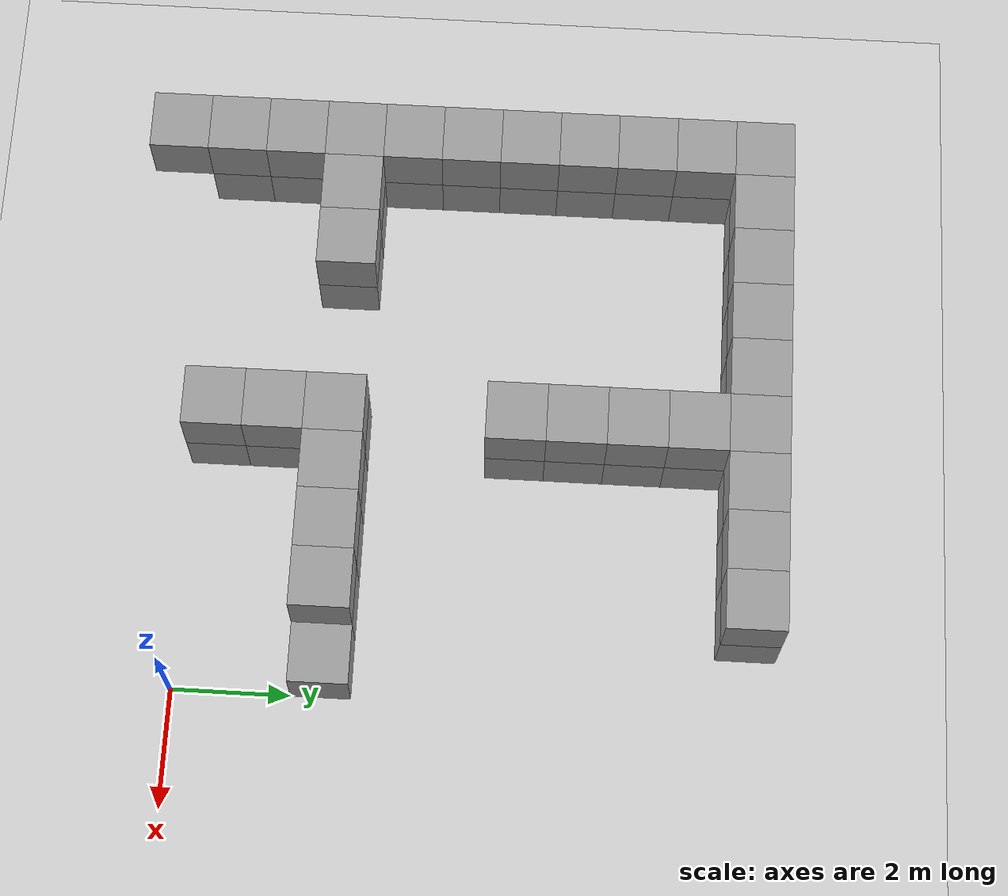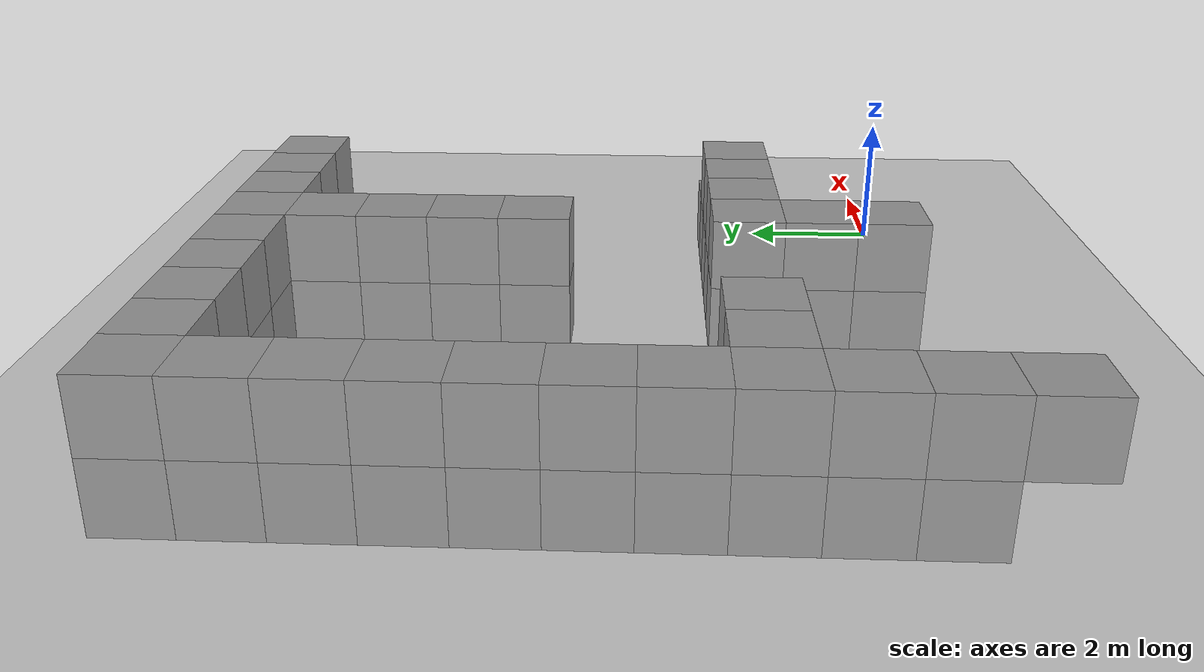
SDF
<sdf version="1.7">
 <world name="default">
  <model name="ground_plane">
   <static>1</static>
   <link name="link">
    <collision name="collision">
     <geometry><plane><normal>0 0 1</normal><size>100 100</size></plane></geometry>
     <surface>
      <contact><collide_bitmask>65535</collide_bitmask></contact>
      <friction><ode><mu>100</mu><mu2>50</mu2></ode></friction>
     </surface>
    </collision>
    <visual name="visual">
     <cast_shadows>0</cast_shadows>
     <geometry><plane><normal>0 0 1</normal><size>100 100</size></plane></geometry>
     <material>
      <script><uri>file://media/materials/scripts/gazebo.material</uri><name>Gazebo/Grey</name></script>
     </material>
    </visual>
   </link>
  </model>
  <model name="unit_box_clone_7_clone_5">
   <pose>-1.5 9.5 0.5 0 -0 0</pose>
   <link name="link">
    <inertial>
     <mass>1</mass>
     <inertia>
      <ixx>0.166667</ixx>
      <ixy>0</ixy>
      <ixz>0</ixz>
      <iyy>0.166667</iyy>
      <iyz>0</iyz>
      <izz>0.166667</izz>
     </inertia>
    </inertial>
    <collision name="collision"><geometry><box><size>1 1 1</size></box></geometry></collision>
    <visual name="visual">
     <geometry><box><size>1 1 1</size></box></geometry>
     <material>
      <script><name>Gazebo/Grey</name><uri>file://media/materials/scripts/gazebo.material</uri></script>
     </material>
    </visual>
   </link>
  </model>
  <model name="unit_box_clone_7_clone_6">
   <pose>-2.5 9.5 0.5 0 -0 0</pose>
   <link name="link">
    <inertial>
     <mass>1</mass>
     <inertia>
      <ixx>0.166667</ixx>
      <ixy>0</ixy>
      <ixz>0</ixz>
      <iyy>0.166667</iyy>
      <iyz>0</iyz>
      <izz>0.166667</izz>
     </inertia>
    </inertial>
    <collision name="collision"><geometry><box><size>1 1 1</size></box></geometry></collision>
    <visual name="visual">
     <geometry><box><size>1 1 1</size></box></geometry>
     <material>
      <script><name>Gazebo/Grey</name><uri>file://media/materials/scripts/gazebo.material</uri></script>
     </material>
    </visual>
   </link>
  </model>
  <model name="unit_box_clone_7_clone_7">
   <pose>-3.5 9.5 0.5 0 -0 0</pose>
   <link name="link">
    <inertial>
     <mass>1</mass>
     <inertia>
      <ixx>0.166667</ixx>
      <ixy>0</ixy>
      <ixz>0</ixz>
      <iyy>0.166667</iyy>
      <iyz>0</iyz>
      <izz>0.166667</izz>
     </inertia>
    </inertial>
    <collision name="collision"><geometry><box><size>1 1 1</size></box></geometry></collision>
    <visual name="visual">
     <geometry><box><size>1 1 1</size></box></geometry>
     <material>
      <script><name>Gazebo/Grey</name><uri>file://media/materials/scripts/gazebo.material</uri></script>
     </material>
    </visual>
   </link>
  </model>
  <model name="unit_box_clone_7_clone_8">
   <pose>-4.5 9.5 0.5 0 -0 0</pose>
   <link name="link">
    <inertial>
     <mass>1</mass>
     <inertia>
      <ixx>0.166667</ixx>
      <ixy>0</ixy>
      <ixz>0</ixz>
      <iyy>0.166667</iyy>
      <iyz>0</iyz>
      <izz>0.166667</izz>
     </inertia>
    </inertial>
    <collision name="collision"><geometry><box><size>1 1 1</size></box></geometry></collision>
    <visual name="visual">
     <geometry><box><size>1 1 1</size></box></geometry>
     <material>
      <script><name>Gazebo/Grey</name><uri>file://media/materials/scripts/gazebo.material</uri></script>
     </material>
    </visual>
   </link>
  </model>
  <model name="unit_box_clone_7_clone_9">
   <pose>-5.5 9.5 0.5 0 -0 0</pose>
   <link name="link">
    <inertial>
     <mass>1</mass>
     <inertia>
      <ixx>0.166667</ixx>
      <ixy>0</ixy>
      <ixz>0</ixz>
      <iyy>0.166667</iyy>
      <iyz>0</iyz>
      <izz>0.166667</izz>
     </inertia>
    </inertial>
    <collision name="collision"><geometry><box><size>1 1 1</size></box></geometry></collision>
    <visual name="visual">
     <geometry><box><size>1 1 1</size></box></geometry>
     <material>
      <script><name>Gazebo/Grey</name><uri>file://media/materials/scripts/gazebo.material</uri></script>
     </material>
    </visual>
   </link>
  </model>
  <model name="unit_box_clone_0_clone_clone_26_clone_18">
   <pose>-5.5 9.5 1.5 0 -0 0</pose>
   <link name="link">
    <inertial>
     <mass>1</mass>
     <inertia>
      <ixx>0.166667</ixx>
      <ixy>0</ixy>
      <ixz>0</ixz>
      <iyy>0.166667</iyy>
      <iyz>0</iyz>
      <izz>0.166667</izz>
     </inertia>
    </inertial>
    <collision name="collision"><geometry><box><size>1 1 1</size></box></geometry></collision>
    <visual name="visual">
     <geometry><box><size>1 1 1</size></box></geometry>
     <material>
      <script><name>Gazebo/Grey</name><uri>file://media/materials/scripts/gazebo.material</uri></script>
     </material>
    </visual>
   </link>
  </model>
  <model name="unit_box_clone_0_clone_clone_26_clone_19">
   <pose>-4.5 9.5 1.5 0 -0 0</pose>
   <link name="link">
    <inertial>
     <mass>1</mass>
     <inertia>
      <ixx>0.166667</ixx>
      <ixy>0</ixy>
      <ixz>0</ixz>
      <iyy>0.166667</iyy>
      <iyz>0</iyz>
      <izz>0.166667</izz>
     </inertia>
    </inertial>
    <collision name="collision"><geometry><box><size>1 1 1</size></box></geometry></collision>
    <visual name="visual">
     <geometry><box><size>1 1 1</size></box></geometry>
     <material>
      <script><name>Gazebo/Grey</name><uri>file://media/materials/scripts/gazebo.material</uri></script>
     </material>
    </visual>
   </link>
  </model>
  <model name="unit_box_clone_0_clone_clone_26_clone_20">
   <pose>-2.5 9.5 1.5 0 -0 0</pose>
   <link name="link">
    <inertial>
     <mass>1</mass>
     <inertia>
      <ixx>0.166667</ixx>
      <ixy>0</ixy>
      <ixz>0</ixz>
      <iyy>0.166667</iyy>
      <iyz>0</iyz>
      <izz>0.166667</izz>
     </inertia>
    </inertial>
    <collision name="collision"><geometry><box><size>1 1 1</size></box></geometry></collision>
    <visual name="visual">
     <geometry><box><size>1 1 1</size></box></geometry>
     <material>
      <script><name>Gazebo/Grey</name><uri>file://media/materials/scripts/gazebo.material</uri></script>
     </material>
    </visual>
   </link>
  </model>
  <model name="unit_box_clone_0_clone_clone_26_clone_21">
   <pose>-3.5 9.5 1.5 0 -0 0</pose>
   <link name="link">
    <inertial>
     <mass>1</mass>
     <inertia>
      <ixx>0.166667</ixx>
      <ixy>0</ixy>
      <ixz>0</ixz>
      <iyy>0.166667</iyy>
      <iyz>0</iyz>
      <izz>0.166667</izz>
     </inertia>
    </inertial>
    <collision name="collision"><geometry><box><size>1 1 1</size></box></geometry></collision>
    <visual name="visual">
     <geometry><box><size>1 1 1</size></box></geometry>
     <material>
      <script><name>Gazebo/Grey</name><uri>file://media/materials/scripts/gazebo.material</uri></script>
     </material>
    </visual>
   </link>
  </model>
  <model name="unit_box_clone_0_clone_clone_26_clone_22">
   <pose>-1.5 9.5 1.5 0 -0 0</pose>
   <link name="link">
    <inertial>
     <mass>1</mass>
     <inertia>
      <ixx>0.166667</ixx>
      <ixy>0</ixy>
      <ixz>0</ixz>
      <iyy>0.166667</iyy>
      <iyz>0</iyz>
      <izz>0.166667</izz>
     </inertia>
    </inertial>
    <collision name="collision"><geometry><box><size>1 1 1</size></box></geometry></collision>
    <visual name="visual">
     <geometry><box><size>1 1 1</size></box></geometry>
     <material>
      <script><name>Gazebo/Grey</name><uri>file://media/materials/scripts/gazebo.material</uri></script>
     </material>
    </visual>
   </link>
  </model>
  <model name="unit_box_clone_7_clone_18_clone_2">
   <pose>-4.5 8.5 0.5 0 -0 0</pose>
   <link name="link">
    <inertial>
     <mass>1</mass>
     <inertia>
      <ixx>0.166667</ixx>
      <ixy>0</ixy>
      <ixz>0</ixz>
      <iyy>0.166667</iyy>
      <iyz>0</iyz>
      <izz>0.166667</izz>
     </inertia>
    </inertial>
    <collision name="collision"><geometry><box><size>1 1 1</size></box></geometry></collision>
    <visual name="visual">
     <geometry><box><size>1 1 1</size></box></geometry>
     <material>
      <script><name>Gazebo/Grey</name><uri>file://media/materials/scripts/gazebo.material</uri></script>
     </material>
    </visual>
   </link>
  </model>
  <model name="unit_box_clone_7_clone_18_clone_3">
   <pose>-4.5 7.5 0.5 0 -0 0</pose>
   <link name="link">
    <inertial>
     <mass>1</mass>
     <inertia>
      <ixx>0.166667</ixx>
      <ixy>0</ixy>
      <ixz>0</ixz>
      <iyy>0.166667</iyy>
      <iyz>0</iyz>
      <izz>0.166667</izz>
     </inertia>
    </inertial>
    <collision name="collision"><geometry><box><size>1 1 1</size></box></geometry></collision>
    <visual name="visual">
     <geometry><box><size>1 1 1</size></box></geometry>
     <material>
      <script><name>Gazebo/Grey</name><uri>file://media/materials/scripts/gazebo.material</uri></script>
     </material>
    </visual>
   </link>
  </model>
  <model name="unit_box_clone_7_clone_18_clone_3_clone">
   <pose>-4.5 6.5 0.5 0 -0 0</pose>
   <link name="link">
    <inertial>
     <mass>1</mass>
     <inertia>
      <ixx>0.166667</ixx>
      <ixy>0</ixy>
      <ixz>0</ixz>
      <iyy>0.166667</iyy>
      <iyz>0</iyz>
      <izz>0.166667</izz>
     </inertia>
    </inertial>
    <collision name="collision"><geometry><box><size>1 1 1</size></box></geometry></collision>
    <visual name="visual">
     <geometry><box><size>1 1 1</size></box></geometry>
     <material>
      <script><name>Gazebo/Grey</name><uri>file://media/materials/scripts/gazebo.material</uri></script>
     </material>
    </visual>
   </link>
  </model>
  <model name="unit_box_clone_0_clone_clone_26_clone_2_clone_2">
   <pose>-4.5 8.5 1.5 0 -0 0</pose>
   <link name="link">
    <inertial>
     <mass>1</mass>
     <inertia>
      <ixx>0.166667</ixx>
      <ixy>0</ixy>
      <ixz>0</ixz>
      <iyy>0.166667</iyy>
      <iyz>0</iyz>
      <izz>0.166667</izz>
     </inertia>
    </inertial>
    <collision name="collision"><geometry><box><size>1 1 1</size></box></geometry></collision>
    <visual name="visual">
     <geometry><box><size>1 1 1</size></box></geometry>
     <material>
      <script><name>Gazebo/Grey</name><uri>file://media/materials/scripts/gazebo.material</uri></script>
     </material>
    </visual>
   </link>
  </model>
  <model name="unit_box_clone_0_clone_clone_26_clone_2_clone_3">
   <pose>-4.5 7.5 1.5 0 -0 0</pose>
   <link name="link">
    <inertial>
     <mass>1</mass>
     <inertia>
      <ixx>0.166667</ixx>
      <ixy>0</ixy>
      <ixz>0</ixz>
      <iyy>0.166667</iyy>
      <iyz>0</iyz>
      <izz>0.166667</izz>
     </inertia>
    </inertial>
    <collision name="collision"><geometry><box><size>1 1 1</size></box></geometry></collision>
    <visual name="visual">
     <geometry><box><size>1 1 1</size></box></geometry>
     <material>
      <script><name>Gazebo/Grey</name><uri>file://media/materials/scripts/gazebo.material</uri></script>
     </material>
    </visual>
   </link>
  </model>
  <model name="unit_box_clone_0_clone_clone_26_clone_2_clone_4">
   <pose>-4.5 6.5 1.5 0 -0 0</pose>
   <link name="link">
    <inertial>
     <mass>1</mass>
     <inertia>
      <ixx>0.166667</ixx>
      <ixy>0</ixy>
      <ixz>0</ixz>
      <iyy>0.166667</iyy>
      <iyz>0</iyz>
      <izz>0.166667</izz>
     </inertia>
    </inertial>
    <collision name="collision"><geometry><box><size>1 1 1</size></box></geometry></collision>
    <visual name="visual">
     <geometry><box><size>1 1 1</size></box></geometry>
     <material>
      <script><name>Gazebo/Grey</name><uri>file://media/materials/scripts/gazebo.material</uri></script>
     </material>
    </visual>
   </link>
  </model>
  <model name="unit_box_clone_7_clone_18_clone_3_clone_clone_3">
   <pose>-4.5 2.5 0.5 0 -0 0</pose>
   <link name="link">
    <inertial>
     <mass>1</mass>
     <inertia>
      <ixx>0.166667</ixx>
      <ixy>0</ixy>
      <ixz>0</ixz>
      <iyy>0.166667</iyy>
      <iyz>0</iyz>
      <izz>0.166667</izz>
     </inertia>
    </inertial>
    <collision name="collision"><geometry><box><size>1 1 1</size></box></geometry></collision>
    <visual name="visual">
     <geometry><box><size>1 1 1</size></box></geometry>
     <material>
      <script><name>Gazebo/Grey</name><uri>file://media/materials/scripts/gazebo.material</uri></script>
     </material>
    </visual>
   </link>
  </model>
  <model name="unit_box_clone_0_clone_clone_26_clone_2_clone_1_clone_0">
   <pose>-4.5 2.5 1.5 0 -0 0</pose>
   <link name="link">
    <inertial>
     <mass>1</mass>
     <inertia>
      <ixx>0.166667</ixx>
      <ixy>0</ixy>
      <ixz>0</ixz>
      <iyy>0.166667</iyy>
      <iyz>0</iyz>
      <izz>0.166667</izz>
     </inertia>
    </inertial>
    <collision name="collision"><geometry><box><size>1 1 1</size></box></geometry></collision>
    <visual name="visual">
     <geometry><box><size>1 1 1</size></box></geometry>
     <material>
      <script><name>Gazebo/Grey</name><uri>file://media/materials/scripts/gazebo.material</uri></script>
     </material>
    </visual>
   </link>
  </model>
  <model name="unit_box_clone_7_clone_18_clone_3_clone_clone_5">
   <pose>-4.5 5.5 0.5 0 -0 0</pose>
   <link name="link">
    <inertial>
     <mass>1</mass>
     <inertia>
      <ixx>0.166667</ixx>
      <ixy>0</ixy>
      <ixz>0</ixz>
      <iyy>0.166667</iyy>
      <iyz>0</iyz>
      <izz>0.166667</izz>
     </inertia>
    </inertial>
    <collision name="collision"><geometry><box><size>1 1 1</size></box></geometry></collision>
    <visual name="visual">
     <geometry><box><size>1 1 1</size></box></geometry>
     <material>
      <script><name>Gazebo/Grey</name><uri>file://media/materials/scripts/gazebo.material</uri></script>
     </material>
    </visual>
   </link>
  </model>
  <model name="unit_box_clone_0_clone_clone_26_clone_2_clone_4_clone">
   <pose>-4.5 5.5 1.5 0 -0 0</pose>
   <link name="link">
    <inertial>
     <mass>1</mass>
     <inertia>
      <ixx>0.166667</ixx>
      <ixy>0</ixy>
      <ixz>0</ixz>
      <iyy>0.166667</iyy>
      <iyz>0</iyz>
      <izz>0.166667</izz>
     </inertia>
    </inertial>
    <collision name="collision"><geometry><box><size>1 1 1</size></box></geometry></collision>
    <visual name="visual">
     <geometry><box><size>1 1 1</size></box></geometry>
     <material>
      <script><name>Gazebo/Grey</name><uri>file://media/materials/scripts/gazebo.material</uri></script>
     </material>
    </visual>
   </link>
  </model>
  <model name="unit_box_clone_7_clone_18_clone_3_clone_clone_3_clone">
   <pose>-3.5 2.5 0.5 0 -0 0</pose>
   <link name="link">
    <inertial>
     <mass>1</mass>
     <inertia>
      <ixx>0.166667</ixx>
      <ixy>0</ixy>
      <ixz>0</ixz>
      <iyy>0.166667</iyy>
      <iyz>0</iyz>
      <izz>0.166667</izz>
     </inertia>
    </inertial>
    <collision name="collision"><geometry><box><size>1 1 1</size></box></geometry></collision>
    <visual name="visual">
     <geometry><box><size>1 1 1</size></box></geometry>
     <material>
      <script><name>Gazebo/Grey</name><uri>file://media/materials/scripts/gazebo.material</uri></script>
     </material>
    </visual>
   </link>
  </model>
  <model name="unit_box_clone_7_clone_18_clone_3_clone_clone_3_clone_0">
   <pose>-2.5 2.5 0.5 0 -0 0</pose>
   <link name="link">
    <inertial>
     <mass>1</mass>
     <inertia>
      <ixx>0.166667</ixx>
      <ixy>0</ixy>
      <ixz>0</ixz>
      <iyy>0.166667</iyy>
      <iyz>0</iyz>
      <izz>0.166667</izz>
     </inertia>
    </inertial>
    <collision name="collision"><geometry><box><size>1 1 1</size></box></geometry></collision>
    <visual name="visual">
     <geometry><box><size>1 1 1</size></box></geometry>
     <material>
      <script><name>Gazebo/Grey</name><uri>file://media/materials/scripts/gazebo.material</uri></script>
     </material>
    </visual>
   </link>
  </model>
  <model name="unit_box_clone_7_clone_18_clone_3_clone_clone_3_clone_1">
   <pose>-1.5 2.5 0.5 0 -0 0</pose>
   <link name="link">
    <inertial>
     <mass>1</mass>
     <inertia>
      <ixx>0.166667</ixx>
      <ixy>0</ixy>
      <ixz>0</ixz>
      <iyy>0.166667</iyy>
      <iyz>0</iyz>
      <izz>0.166667</izz>
     </inertia>
    </inertial>
    <collision name="collision"><geometry><box><size>1 1 1</size></box></geometry></collision>
    <visual name="visual">
     <geometry><box><size>1 1 1</size></box></geometry>
     <material>
      <script><name>Gazebo/Grey</name><uri>file://media/materials/scripts/gazebo.material</uri></script>
     </material>
    </visual>
   </link>
  </model>
  <model name="unit_box_clone_7_clone_18_clone_3_clone_clone_3_clone_2">
   <pose>-0.5 2.5 0.5 0 -0 0</pose>
   <link name="link">
    <inertial>
     <mass>1</mass>
     <inertia>
      <ixx>0.166667</ixx>
      <ixy>0</ixy>
      <ixz>0</ixz>
      <iyy>0.166667</iyy>
      <iyz>0</iyz>
      <izz>0.166667</izz>
     </inertia>
    </inertial>
    <collision name="collision"><geometry><box><size>1 1 1</size></box></geometry></collision>
    <visual name="visual">
     <geometry><box><size>1 1 1</size></box></geometry>
     <material>
      <script><name>Gazebo/Grey</name><uri>file://media/materials/scripts/gazebo.material</uri></script>
     </material>
    </visual>
   </link>
  </model>
  <model name="unit_box_clone_0_clone_clone_26_clone_2_clone_1_clone_0_clone">
   <pose>-3.5 2.5 1.5 0 -0 0</pose>
   <link name="link">
    <inertial>
     <mass>1</mass>
     <inertia>
      <ixx>0.166667</ixx>
      <ixy>0</ixy>
      <ixz>0</ixz>
      <iyy>0.166667</iyy>
      <iyz>0</iyz>
      <izz>0.166667</izz>
     </inertia>
    </inertial>
    <collision name="collision"><geometry><box><size>1 1 1</size></box></geometry></collision>
    <visual name="visual">
     <geometry><box><size>1 1 1</size></box></geometry>
     <material>
      <script><name>Gazebo/Grey</name><uri>file://media/materials/scripts/gazebo.material</uri></script>
     </material>
    </visual>
   </link>
  </model>
  <model name="unit_box_clone_0_clone_clone_26_clone_2_clone_1_clone_0_clone_0">
   <pose>-2.5 2.5 1.5 0 -0 0</pose>
   <link name="link">
    <inertial>
     <mass>1</mass>
     <inertia>
      <ixx>0.166667</ixx>
      <ixy>0</ixy>
      <ixz>0</ixz>
      <iyy>0.166667</iyy>
      <iyz>0</iyz>
      <izz>0.166667</izz>
     </inertia>
    </inertial>
    <collision name="collision"><geometry><box><size>1 1 1</size></box></geometry></collision>
    <visual name="visual">
     <geometry><box><size>1 1 1</size></box></geometry>
     <material>
      <script><name>Gazebo/Grey</name><uri>file://media/materials/scripts/gazebo.material</uri></script>
     </material>
    </visual>
   </link>
  </model>
  <model name="unit_box_clone_0_clone_clone_26_clone_2_clone_1_clone_0_clone_1">
   <pose>-1.5 2.5 1.5 0 -0 0</pose>
   <link name="link">
    <inertial>
     <mass>1</mass>
     <inertia>
      <ixx>0.166667</ixx>
      <ixy>0</ixy>
      <ixz>0</ixz>
      <iyy>0.166667</iyy>
      <iyz>0</iyz>
      <izz>0.166667</izz>
     </inertia>
    </inertial>
    <collision name="collision"><geometry><box><size>1 1 1</size></box></geometry></collision>
    <visual name="visual">
     <geometry><box><size>1 1 1</size></box></geometry>
     <material>
      <script><name>Gazebo/Grey</name><uri>file://media/materials/scripts/gazebo.material</uri></script>
     </material>
    </visual>
   </link>
  </model>
  <model name="unit_box_clone_7_clone_18_clone_3_clone_clone_3_clone_3">
   <pose>-4.5 1.5 0.5 0 -0 0</pose>
   <link name="link">
    <inertial>
     <mass>1</mass>
     <inertia>
      <ixx>0.166667</ixx>
      <ixy>0</ixy>
      <ixz>0</ixz>
      <iyy>0.166667</iyy>
      <iyz>0</iyz>
      <izz>0.166667</izz>
     </inertia>
    </inertial>
    <collision name="collision"><geometry><box><size>1 1 1</size></box></geometry></collision>
    <visual name="visual">
     <geometry><box><size>1 1 1</size></box></geometry>
     <material>
      <script><name>Gazebo/Grey</name><uri>file://media/materials/scripts/gazebo.material</uri></script>
     </material>
    </visual>
   </link>
  </model>
  <model name="unit_box_clone_7_clone_18_clone_3_clone_clone_3_clone_4">
   <pose>-4.5 0.5 0.5 0 -0 0</pose>
   <link name="link">
    <inertial>
     <mass>1</mass>
     <inertia>
      <ixx>0.166667</ixx>
      <ixy>0</ixy>
      <ixz>0</ixz>
      <iyy>0.166667</iyy>
      <iyz>0</iyz>
      <izz>0.166667</izz>
     </inertia>
    </inertial>
    <collision name="collision"><geometry><box><size>1 1 1</size></box></geometry></collision>
    <visual name="visual">
     <geometry><box><size>1 1 1</size></box></geometry>
     <material>
      <script><name>Gazebo/Grey</name><uri>file://media/materials/scripts/gazebo.material</uri></script>
     </material>
    </visual>
   </link>
  </model>
  <model name="unit_box_clone_0_clone_clone_26_clone_2_clone_1_clone_0_clone_3">
   <pose>-4.5 1.5 1.5 0 -0 0</pose>
   <link name="link">
    <inertial>
     <mass>1</mass>
     <inertia>
      <ixx>0.166667</ixx>
      <ixy>0</ixy>
      <ixz>0</ixz>
      <iyy>0.166667</iyy>
      <iyz>0</iyz>
      <izz>0.166667</izz>
     </inertia>
    </inertial>
    <collision name="collision"><geometry><box><size>1 1 1</size></box></geometry></collision>
    <visual name="visual">
     <geometry><box><size>1 1 1</size></box></geometry>
     <material>
      <script><name>Gazebo/Grey</name><uri>file://media/materials/scripts/gazebo.material</uri></script>
     </material>
    </visual>
   </link>
  </model>
  <model name="unit_box_clone_0_clone_clone_26_clone_2_clone_1_clone_0_clone_4">
   <pose>-4.5 0.5 1.5 0 -0 0</pose>
   <link name="link">
    <inertial>
     <mass>1</mass>
     <inertia>
      <ixx>0.166667</ixx>
      <ixy>0</ixy>
      <ixz>0</ixz>
      <iyy>0.166667</iyy>
      <iyz>0</iyz>
      <izz>0.166667</izz>
     </inertia>
    </inertial>
    <collision name="collision"><geometry><box><size>1 1 1</size></box></geometry></collision>
    <visual name="visual">
     <geometry><box><size>1 1 1</size></box></geometry>
     <material>
      <script><name>Gazebo/Grey</name><uri>file://media/materials/scripts/gazebo.material</uri></script>
     </material>
    </visual>
   </link>
  </model>
  <model name="unit_box_clone_7_clone_9_clone">
   <pose>-6.5 9.5 0.5 0 -0 0</pose>
   <link name="link">
    <inertial>
     <mass>1</mass>
     <inertia>
      <ixx>0.166667</ixx>
      <ixy>0</ixy>
      <ixz>0</ixz>
      <iyy>0.166667</iyy>
      <iyz>0</iyz>
      <izz>0.166667</izz>
     </inertia>
    </inertial>
    <collision name="collision"><geometry><box><size>1 1 1</size></box></geometry></collision>
    <visual name="visual">
     <geometry><box><size>1 1 1</size></box></geometry>
     <material>
      <script><name>Gazebo/Grey</name><uri>file://media/materials/scripts/gazebo.material</uri></script>
     </material>
    </visual>
   </link>
  </model>
  <model name="unit_box_clone_7_clone_9_clone_0">
   <pose>-7.5 9.5 0.5 0 -0 0</pose>
   <link name="link">
    <inertial>
     <mass>1</mass>
     <inertia>
      <ixx>0.166667</ixx>
      <ixy>0</ixy>
      <ixz>0</ixz>
      <iyy>0.166667</iyy>
      <iyz>0</iyz>
      <izz>0.166667</izz>
     </inertia>
    </inertial>
    <collision name="collision"><geometry><box><size>1 1 1</size></box></geometry></collision>
    <visual name="visual">
     <geometry><box><size>1 1 1</size></box></geometry>
     <material>
      <script><name>Gazebo/Grey</name><uri>file://media/materials/scripts/gazebo.material</uri></script>
     </material>
    </visual>
   </link>
  </model>
  <model name="unit_box_clone_7_clone_9_clone_1">
   <pose>-8.5 9.5 0.5 0 -0 0</pose>
   <link name="link">
    <inertial>
     <mass>1</mass>
     <inertia>
      <ixx>0.166667</ixx>
      <ixy>0</ixy>
      <ixz>0</ixz>
      <iyy>0.166667</iyy>
      <iyz>0</iyz>
      <izz>0.166667</izz>
     </inertia>
    </inertial>
    <collision name="collision"><geometry><box><size>1 1 1</size></box></geometry></collision>
    <visual name="visual">
     <geometry><box><size>1 1 1</size></box></geometry>
     <material>
      <script><name>Gazebo/Grey</name><uri>file://media/materials/scripts/gazebo.material</uri></script>
     </material>
    </visual>
   </link>
  </model>
  <model name="unit_box_clone_7_clone_9_clone_2">
   <pose>-9.5 9.5 0.5 0 -0 0</pose>
   <link name="link">
    <inertial>
     <mass>1</mass>
     <inertia>
      <ixx>0.166667</ixx>
      <ixy>0</ixy>
      <ixz>0</ixz>
      <iyy>0.166667</iyy>
      <iyz>0</iyz>
      <izz>0.166667</izz>
     </inertia>
    </inertial>
    <collision name="collision"><geometry><box><size>1 1 1</size></box></geometry></collision>
    <visual name="visual">
     <geometry><box><size>1 1 1</size></box></geometry>
     <material>
      <script><name>Gazebo/Grey</name><uri>file://media/materials/scripts/gazebo.material</uri></script>
     </material>
    </visual>
   </link>
  </model>
  <model name="unit_box_clone_7_clone_9_clone_3">
   <pose>-9.5 8.5 0.5 0 -0 0</pose>
   <link name="link">
    <inertial>
     <mass>1</mass>
     <inertia>
      <ixx>0.166667</ixx>
      <ixy>0</ixy>
      <ixz>0</ixz>
      <iyy>0.166667</iyy>
      <iyz>0</iyz>
      <izz>0.166667</izz>
     </inertia>
    </inertial>
    <collision name="collision"><geometry><box><size>1 1 1</size></box></geometry></collision>
    <visual name="visual">
     <geometry><box><size>1 1 1</size></box></geometry>
     <material>
      <script><name>Gazebo/Grey</name><uri>file://media/materials/scripts/gazebo.material</uri></script>
     </material>
    </visual>
   </link>
  </model>
  <model name="unit_box_clone_7_clone_9_clone_4">
   <pose>-9.5 7.5 0.5 0 -0 0</pose>
   <link name="link">
    <inertial>
     <mass>1</mass>
     <inertia>
      <ixx>0.166667</ixx>
      <ixy>0</ixy>
      <ixz>0</ixz>
      <iyy>0.166667</iyy>
      <iyz>0</iyz>
      <izz>0.166667</izz>
     </inertia>
    </inertial>
    <collision name="collision"><geometry><box><size>1 1 1</size></box></geometry></collision>
    <visual name="visual">
     <geometry><box><size>1 1 1</size></box></geometry>
     <material>
      <script><name>Gazebo/Grey</name><uri>file://media/materials/scripts/gazebo.material</uri></script>
     </material>
    </visual>
   </link>
  </model>
  <model name="unit_box_clone_7_clone_9_clone_5">
   <pose>-9.5 6.5 0.5 0 -0 0</pose>
   <link name="link">
    <inertial>
     <mass>1</mass>
     <inertia>
      <ixx>0.166667</ixx>
      <ixy>0</ixy>
      <ixz>0</ixz>
      <iyy>0.166667</iyy>
      <iyz>0</iyz>
      <izz>0.166667</izz>
     </inertia>
    </inertial>
    <collision name="collision"><geometry><box><size>1 1 1</size></box></geometry></collision>
    <visual name="visual">
     <geometry><box><size>1 1 1</size></box></geometry>
     <material>
      <script><name>Gazebo/Grey</name><uri>file://media/materials/scripts/gazebo.material</uri></script>
     </material>
    </visual>
   </link>
  </model>
  <model name="unit_box_clone_7_clone_9_clone_6">
   <pose>-9.5 5.5 0.5 0 -0 0</pose>
   <link name="link">
    <inertial>
     <mass>1</mass>
     <inertia>
      <ixx>0.166667</ixx>
      <ixy>0</ixy>
      <ixz>0</ixz>
      <iyy>0.166667</iyy>
      <iyz>0</iyz>
      <izz>0.166667</izz>
     </inertia>
    </inertial>
    <collision name="collision"><geometry><box><size>1 1 1</size></box></geometry></collision>
    <visual name="visual">
     <geometry><box><size>1 1 1</size></box></geometry>
     <material>
      <script><name>Gazebo/Grey</name><uri>file://media/materials/scripts/gazebo.material</uri></script>
     </material>
    </visual>
   </link>
  </model>
  <model name="unit_box_clone_7_clone_9_clone_7">
   <pose>-9.5 4.5 0.5 0 -0 0</pose>
   <link name="link">
    <inertial>
     <mass>1</mass>
     <inertia>
      <ixx>0.166667</ixx>
      <ixy>0</ixy>
      <ixz>0</ixz>
      <iyy>0.166667</iyy>
      <iyz>0</iyz>
      <izz>0.166667</izz>
     </inertia>
    </inertial>
    <collision name="collision"><geometry><box><size>1 1 1</size></box></geometry></collision>
    <visual name="visual">
     <geometry><box><size>1 1 1</size></box></geometry>
     <material>
      <script><name>Gazebo/Grey</name><uri>file://media/materials/scripts/gazebo.material</uri></script>
     </material>
    </visual>
   </link>
  </model>
  <model name="unit_box_clone_7_clone_9_clone_8">
   <pose>-9.5 3.5 0.5 0 -0 0</pose>
   <link name="link">
    <inertial>
     <mass>1</mass>
     <inertia>
      <ixx>0.166667</ixx>
      <ixy>0</ixy>
      <ixz>0</ixz>
      <iyy>0.166667</iyy>
      <iyz>0</iyz>
      <izz>0.166667</izz>
     </inertia>
    </inertial>
    <collision name="collision"><geometry><box><size>1 1 1</size></box></geometry></collision>
    <visual name="visual">
     <geometry><box><size>1 1 1</size></box></geometry>
     <material>
      <script><name>Gazebo/Grey</name><uri>file://media/materials/scripts/gazebo.material</uri></script>
     </material>
    </visual>
   </link>
  </model>
  <model name="unit_box_clone_7_clone_9_clone_9">
   <pose>-9.5 2.5 0.5 0 -0 0</pose>
   <link name="link">
    <inertial>
     <mass>1</mass>
     <inertia>
      <ixx>0.166667</ixx>
      <ixy>0</ixy>
      <ixz>0</ixz>
      <iyy>0.166667</iyy>
      <iyz>0</iyz>
      <izz>0.166667</izz>
     </inertia>
    </inertial>
    <collision name="collision"><geometry><box><size>1 1 1</size></box></geometry></collision>
    <visual name="visual">
     <geometry><box><size>1 1 1</size></box></geometry>
     <material>
      <script><name>Gazebo/Grey</name><uri>file://media/materials/scripts/gazebo.material</uri></script>
     </material>
    </visual>
   </link>
  </model>
  <model name="unit_box_clone_7_clone_9_clone_10">
   <pose>-8.5 2.5 0.5 0 -0 0</pose>
   <link name="link">
    <inertial>
     <mass>1</mass>
     <inertia>
      <ixx>0.166667</ixx>
      <ixy>0</ixy>
      <ixz>0</ixz>
      <iyy>0.166667</iyy>
      <iyz>0</iyz>
      <izz>0.166667</izz>
     </inertia>
    </inertial>
    <collision name="collision"><geometry><box><size>1 1 1</size></box></geometry></collision>
    <visual name="visual">
     <geometry><box><size>1 1 1</size></box></geometry>
     <material>
      <script><name>Gazebo/Grey</name><uri>file://media/materials/scripts/gazebo.material</uri></script>
     </material>
    </visual>
   </link>
  </model>
  <model name="unit_box_clone_7_clone_9_clone_11">
   <pose>-7.5 2.5 0.5 0 -0 0</pose>
   <link name="link">
    <inertial>
     <mass>1</mass>
     <inertia>
      <ixx>0.166667</ixx>
      <ixy>0</ixy>
      <ixz>0</ixz>
      <iyy>0.166667</iyy>
      <iyz>0</iyz>
      <izz>0.166667</izz>
     </inertia>
    </inertial>
    <collision name="collision"><geometry><box><size>1 1 1</size></box></geometry></collision>
    <visual name="visual">
     <geometry><box><size>1 1 1</size></box></geometry>
     <material>
      <script><name>Gazebo/Grey</name><uri>file://media/materials/scripts/gazebo.material</uri></script>
     </material>
    </visual>
   </link>
  </model>
  <model name="unit_box_clone_7_clone_9_clone_13">
   <pose>-9.5 1.5 0.5 0 -0 0</pose>
   <link name="link">
    <inertial>
     <mass>1</mass>
     <inertia>
      <ixx>0.166667</ixx>
      <ixy>0</ixy>
      <ixz>0</ixz>
      <iyy>0.166667</iyy>
      <iyz>0</iyz>
      <izz>0.166667</izz>
     </inertia>
    </inertial>
    <collision name="collision"><geometry><box><size>1 1 1</size></box></geometry></collision>
    <visual name="visual">
     <geometry><box><size>1 1 1</size></box></geometry>
     <material>
      <script><name>Gazebo/Grey</name><uri>file://media/materials/scripts/gazebo.material</uri></script>
     </material>
    </visual>
   </link>
  </model>
  <model name="unit_box_clone_7_clone_9_clone_14">
   <pose>-9.5 0.5 0.5 0 -0 0</pose>
   <link name="link">
    <inertial>
     <mass>1</mass>
     <inertia>
      <ixx>0.166667</ixx>
      <ixy>0</ixy>
      <ixz>0</ixz>
      <iyy>0.166667</iyy>
      <iyz>0</iyz>
      <izz>0.166667</izz>
     </inertia>
    </inertial>
    <collision name="collision"><geometry><box><size>1 1 1</size></box></geometry></collision>
    <visual name="visual">
     <geometry><box><size>1 1 1</size></box></geometry>
     <material>
      <script><name>Gazebo/Grey</name><uri>file://media/materials/scripts/gazebo.material</uri></script>
     </material>
    </visual>
   </link>
  </model>
  <model name="unit_box_clone_0_clone_clone_26_clone_18_clone">
   <pose>-6.5 9.5 1.5 0 -0 0</pose>
   <link name="link">
    <inertial>
     <mass>1</mass>
     <inertia>
      <ixx>0.166667</ixx>
      <ixy>0</ixy>
      <ixz>0</ixz>
      <iyy>0.166667</iyy>
      <iyz>0</iyz>
      <izz>0.166667</izz>
     </inertia>
    </inertial>
    <collision name="collision"><geometry><box><size>1 1 1</size></box></geometry></collision>
    <visual name="visual">
     <geometry><box><size>1 1 1</size></box></geometry>
     <material>
      <script><name>Gazebo/Grey</name><uri>file://media/materials/scripts/gazebo.material</uri></script>
     </material>
    </visual>
   </link>
  </model>
  <model name="unit_box_clone_0_clone_clone_26_clone_18_clone_0">
   <pose>-7.5 9.5 1.5 0 -0 0</pose>
   <link name="link">
    <inertial>
     <mass>1</mass>
     <inertia>
      <ixx>0.166667</ixx>
      <ixy>0</ixy>
      <ixz>0</ixz>
      <iyy>0.166667</iyy>
      <iyz>0</iyz>
      <izz>0.166667</izz>
     </inertia>
    </inertial>
    <collision name="collision"><geometry><box><size>1 1 1</size></box></geometry></collision>
    <visual name="visual">
     <geometry><box><size>1 1 1</size></box></geometry>
     <material>
      <script><name>Gazebo/Grey</name><uri>file://media/materials/scripts/gazebo.material</uri></script>
     </material>
    </visual>
   </link>
  </model>
  <model name="unit_box_clone_0_clone_clone_26_clone_18_clone_1">
   <pose>-8.5 9.5 1.5 0 -0 0</pose>
   <link name="link">
    <inertial>
     <mass>1</mass>
     <inertia>
      <ixx>0.166667</ixx>
      <ixy>0</ixy>
      <ixz>0</ixz>
      <iyy>0.166667</iyy>
      <iyz>0</iyz>
      <izz>0.166667</izz>
     </inertia>
    </inertial>
    <collision name="collision"><geometry><box><size>1 1 1</size></box></geometry></collision>
    <visual name="visual">
     <geometry><box><size>1 1 1</size></box></geometry>
     <material>
      <script><name>Gazebo/Grey</name><uri>file://media/materials/scripts/gazebo.material</uri></script>
     </material>
    </visual>
   </link>
  </model>
  <model name="unit_box_clone_0_clone_clone_26_clone_18_clone_2">
   <pose>-9.5 9.5 1.5 0 -0 0</pose>
   <link name="link">
    <inertial>
     <mass>1</mass>
     <inertia>
      <ixx>0.166667</ixx>
      <ixy>0</ixy>
      <ixz>0</ixz>
      <iyy>0.166667</iyy>
      <iyz>0</iyz>
      <izz>0.166667</izz>
     </inertia>
    </inertial>
    <collision name="collision"><geometry><box><size>1 1 1</size></box></geometry></collision>
    <visual name="visual">
     <geometry><box><size>1 1 1</size></box></geometry>
     <material>
      <script><name>Gazebo/Grey</name><uri>file://media/materials/scripts/gazebo.material</uri></script>
     </material>
    </visual>
   </link>
  </model>
  <model name="unit_box_clone_0_clone_clone_26_clone_18_clone_3">
   <pose>-9.5 8.5 1.5 0 -0 0</pose>
   <link name="link">
    <inertial>
     <mass>1</mass>
     <inertia>
      <ixx>0.166667</ixx>
      <ixy>0</ixy>
      <ixz>0</ixz>
      <iyy>0.166667</iyy>
      <iyz>0</iyz>
      <izz>0.166667</izz>
     </inertia>
    </inertial>
    <collision name="collision"><geometry><box><size>1 1 1</size></box></geometry></collision>
    <visual name="visual">
     <geometry><box><size>1 1 1</size></box></geometry>
     <material>
      <script><name>Gazebo/Grey</name><uri>file://media/materials/scripts/gazebo.material</uri></script>
     </material>
    </visual>
   </link>
  </model>
  <model name="unit_box_clone_0_clone_clone_26_clone_18_clone_4">
   <pose>-9.5 7.5 1.5 0 -0 0</pose>
   <link name="link">
    <inertial>
     <mass>1</mass>
     <inertia>
      <ixx>0.166667</ixx>
      <ixy>0</ixy>
      <ixz>0</ixz>
      <iyy>0.166667</iyy>
      <iyz>0</iyz>
      <izz>0.166667</izz>
     </inertia>
    </inertial>
    <collision name="collision"><geometry><box><size>1 1 1</size></box></geometry></collision>
    <visual name="visual">
     <geometry><box><size>1 1 1</size></box></geometry>
     <material>
      <script><name>Gazebo/Grey</name><uri>file://media/materials/scripts/gazebo.material</uri></script>
     </material>
    </visual>
   </link>
  </model>
  <model name="unit_box_clone_0_clone_clone_26_clone_18_clone_5">
   <pose>-9.5 6.5 1.5 0 -0 0</pose>
   <link name="link">
    <inertial>
     <mass>1</mass>
     <inertia>
      <ixx>0.166667</ixx>
      <ixy>0</ixy>
      <ixz>0</ixz>
      <iyy>0.166667</iyy>
      <iyz>0</iyz>
      <izz>0.166667</izz>
     </inertia>
    </inertial>
    <collision name="collision"><geometry><box><size>1 1 1</size></box></geometry></collision>
    <visual name="visual">
     <geometry><box><size>1 1 1</size></box></geometry>
     <material>
      <script><name>Gazebo/Grey</name><uri>file://media/materials/scripts/gazebo.material</uri></script>
     </material>
    </visual>
   </link>
  </model>
  <model name="unit_box_clone_0_clone_clone_26_clone_18_clone_6">
   <pose>-9.5 5.5 1.5 0 -0 0</pose>
   <link name="link">
    <inertial>
     <mass>1</mass>
     <inertia>
      <ixx>0.166667</ixx>
      <ixy>0</ixy>
      <ixz>0</ixz>
      <iyy>0.166667</iyy>
      <iyz>0</iyz>
      <izz>0.166667</izz>
     </inertia>
    </inertial>
    <collision name="collision"><geometry><box><size>1 1 1</size></box></geometry></collision>
    <visual name="visual">
     <geometry><box><size>1 1 1</size></box></geometry>
     <material>
      <script><name>Gazebo/Grey</name><uri>file://media/materials/scripts/gazebo.material</uri></script>
     </material>
    </visual>
   </link>
  </model>
  <model name="unit_box_clone_0_clone_clone_26_clone_18_clone_7">
   <pose>-9.5 4.5 1.5 0 -0 0</pose>
   <link name="link">
    <inertial>
     <mass>1</mass>
     <inertia>
      <ixx>0.166667</ixx>
      <ixy>0</ixy>
      <ixz>0</ixz>
      <iyy>0.166667</iyy>
      <iyz>0</iyz>
      <izz>0.166667</izz>
     </inertia>
    </inertial>
    <collision name="collision"><geometry><box><size>1 1 1</size></box></geometry></collision>
    <visual name="visual">
     <geometry><box><size>1 1 1</size></box></geometry>
     <material>
      <script><name>Gazebo/Grey</name><uri>file://media/materials/scripts/gazebo.material</uri></script>
     </material>
    </visual>
   </link>
  </model>
  <model name="unit_box_clone_0_clone_clone_26_clone_18_clone_8">
   <pose>-9.5 3.5 1.5 0 -0 0</pose>
   <link name="link">
    <inertial>
     <mass>1</mass>
     <inertia>
      <ixx>0.166667</ixx>
      <ixy>0</ixy>
      <ixz>0</ixz>
      <iyy>0.166667</iyy>
      <iyz>0</iyz>
      <izz>0.166667</izz>
     </inertia>
    </inertial>
    <collision name="collision"><geometry><box><size>1 1 1</size></box></geometry></collision>
    <visual name="visual">
     <geometry><box><size>1 1 1</size></box></geometry>
     <material>
      <script><name>Gazebo/Grey</name><uri>file://media/materials/scripts/gazebo.material</uri></script>
     </material>
    </visual>
   </link>
  </model>
  <model name="unit_box_clone_0_clone_clone_26_clone_18_clone_9">
   <pose>-9.5 2.5 1.5 0 -0 0</pose>
   <link name="link">
    <inertial>
     <mass>1</mass>
     <inertia>
      <ixx>0.166667</ixx>
      <ixy>0</ixy>
      <ixz>0</ixz>
      <iyy>0.166667</iyy>
      <iyz>0</iyz>
      <izz>0.166667</izz>
     </inertia>
    </inertial>
    <collision name="collision"><geometry><box><size>1 1 1</size></box></geometry></collision>
    <visual name="visual">
     <geometry><box><size>1 1 1</size></box></geometry>
     <material>
      <script><name>Gazebo/Grey</name><uri>file://media/materials/scripts/gazebo.material</uri></script>
     </material>
    </visual>
   </link>
  </model>
  <model name="unit_box_clone_0_clone_clone_26_clone_18_clone_10">
   <pose>-8.5 2.5 1.5 0 -0 0</pose>
   <link name="link">
    <inertial>
     <mass>1</mass>
     <inertia>
      <ixx>0.166667</ixx>
      <ixy>0</ixy>
      <ixz>0</ixz>
      <iyy>0.166667</iyy>
      <iyz>0</iyz>
      <izz>0.166667</izz>
     </inertia>
    </inertial>
    <collision name="collision"><geometry><box><size>1 1 1</size></box></geometry></collision>
    <visual name="visual">
     <geometry><box><size>1 1 1</size></box></geometry>
     <material>
      <script><name>Gazebo/Grey</name><uri>file://media/materials/scripts/gazebo.material</uri></script>
     </material>
    </visual>
   </link>
  </model>
  <model name="unit_box_clone_0_clone_clone_26_clone_18_clone_11">
   <pose>-7.5 2.5 1.5 0 -0 0</pose>
   <link name="link">
    <inertial>
     <mass>1</mass>
     <inertia>
      <ixx>0.166667</ixx>
      <ixy>0</ixy>
      <ixz>0</ixz>
      <iyy>0.166667</iyy>
      <iyz>0</iyz>
      <izz>0.166667</izz>
     </inertia>
    </inertial>
    <collision name="collision"><geometry><box><size>1 1 1</size></box></geometry></collision>
    <visual name="visual">
     <geometry><box><size>1 1 1</size></box></geometry>
     <material>
      <script><name>Gazebo/Grey</name><uri>file://media/materials/scripts/gazebo.material</uri></script>
     </material>
    </visual>
   </link>
  </model>
  <model name="unit_box_clone_0_clone_clone_26_clone_18_clone_13">
   <pose>-9.5 1.5 1.5 0 -0 0</pose>
   <link name="link">
    <inertial>
     <mass>1</mass>
     <inertia>
      <ixx>0.166667</ixx>
      <ixy>0</ixy>
      <ixz>0</ixz>
      <iyy>0.166667</iyy>
      <iyz>0</iyz>
      <izz>0.166667</izz>
     </inertia>
    </inertial>
    <collision name="collision"><geometry><box><size>1 1 1</size></box></geometry></collision>
    <visual name="visual">
     <geometry><box><size>1 1 1</size></box></geometry>
     <material>
      <script><name>Gazebo/Grey</name><uri>file://media/materials/scripts/gazebo.material</uri></script>
     </material>
    </visual>
   </link>
  </model>
  <model name="unit_box_clone_0_clone_clone_26_clone_18_clone_14">
   <pose>-9.5 0.5 1.5 0 -0 0</pose>
   <link name="link">
    <inertial>
     <mass>1</mass>
     <inertia>
      <ixx>0.166667</ixx>
      <ixy>0</ixy>
      <ixz>0</ixz>
      <iyy>0.166667</iyy>
      <iyz>0</iyz>
      <izz>0.166667</izz>
     </inertia>
    </inertial>
    <collision name="collision"><geometry><box><size>1 1 1</size></box></geometry></collision>
    <visual name="visual">
     <geometry><box><size>1 1 1</size></box></geometry>
     <material>
      <script><name>Gazebo/Grey</name><uri>file://media/materials/scripts/gazebo.material</uri></script>
     </material>
    </visual>
   </link>
  </model>
  <model name="unit_box_clone_0_clone_clone_26_clone_18_clone_15">
   <pose>-9.5 -0.5 1.5 0 -0 0</pose>
   <link name="link">
    <inertial>
     <mass>1</mass>
     <inertia>
      <ixx>0.166667</ixx>
      <ixy>0</ixy>
      <ixz>0</ixz>
      <iyy>0.166667</iyy>
      <iyz>0</iyz>
      <izz>0.166667</izz>
     </inertia>
    </inertial>
    <collision name="collision"><geometry><box><size>1 1 1</size></box></geometry></collision>
    <visual name="visual">
     <geometry><box><size>1 1 1</size></box></geometry>
     <material>
      <script><name>Gazebo/Grey</name><uri>file://media/materials/scripts/gazebo.material</uri></script>
     </material>
    </visual>
   </link>
  </model>
 </world>
</sdf>
